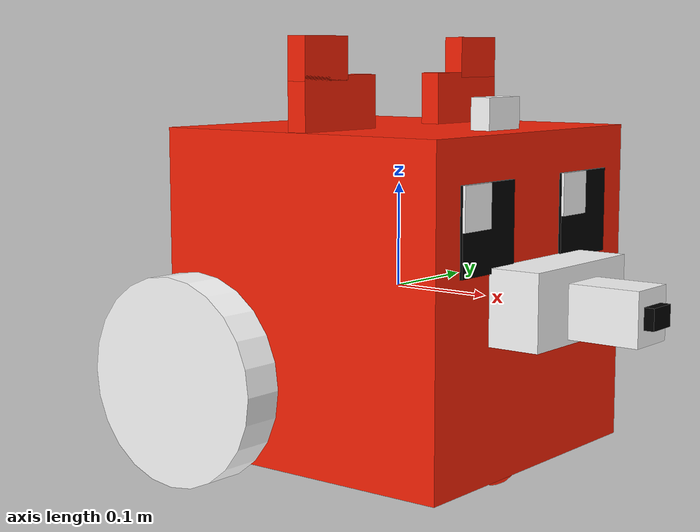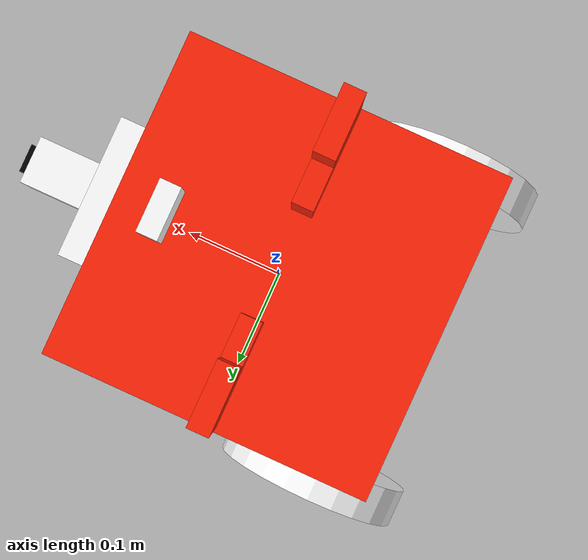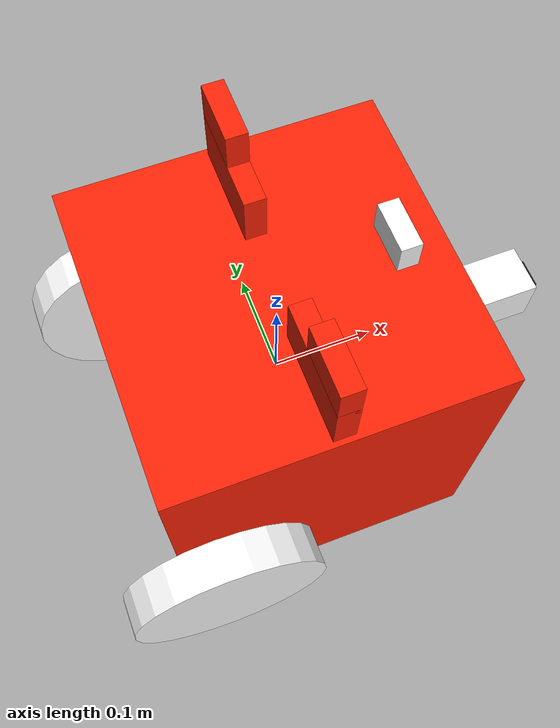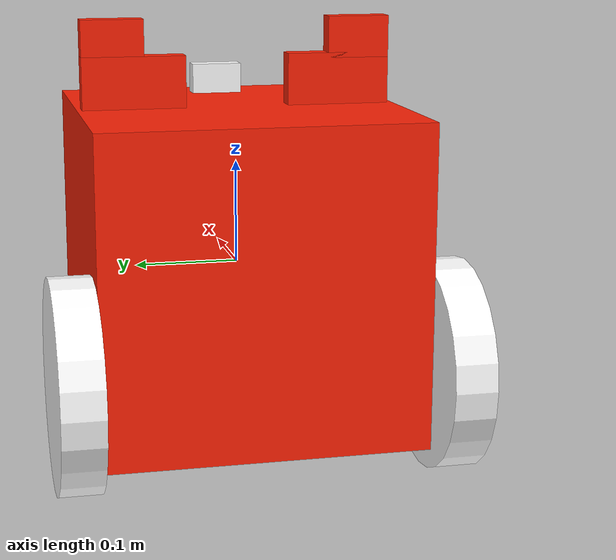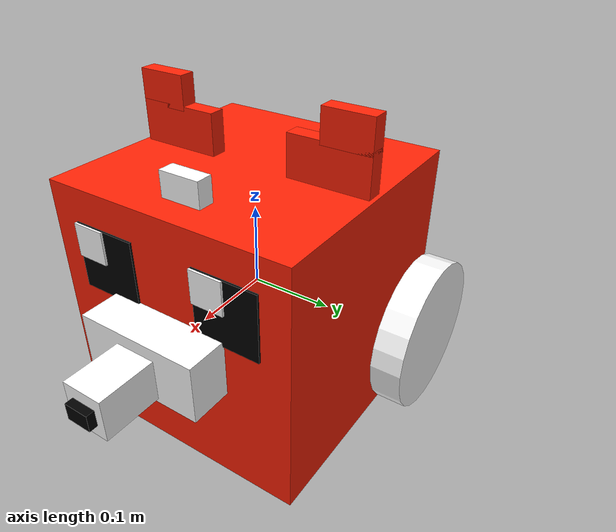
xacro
<?xml version="1.0"?>
<robot name="foxy" xmlns:xacro="http://ros.org/wiki/xacro">
  <xacro:include filename="imu.urdf.xacro" />
  <xacro:include filename="gazebo.urdf.xacro" />

  <!-- Define robot constants -->
  <xacro:property name="base_width" value="0.31"/>
  <xacro:property name="base_length" value="0.31"/>
  <xacro:property name="base_height" value="0.31"/>

  <xacro:property name="ear_low_width" value="0.1"/>
  <xacro:property name="ear_low_length" value="0.02"/>
  <xacro:property name="ear_low_height" value="0.05"/>

  <xacro:property name="ear_high_width" value="0.06"/>
  <xacro:property name="ear_high_length" value="0.02"/>
  <xacro:property name="ear_high_height" value="0.04"/>

  <xacro:property name="eye_width" value="0.08"/>
  <xacro:property name="eye_length" value="0.005"/>
  <xacro:property name="eye_height" value="0.08"/>

  <xacro:property name="eye_reflect_width" value="0.04"/>
  <xacro:property name="eye_reflect_length" value="0.0025"/>
  <xacro:property name="eye_reflect_height" value="0.04"/>

  <xacro:property name="cheek_width" value="0.15"/>
  <xacro:property name="cheek_length" value="0.05"/>
  <xacro:property name="cheek_height" value="0.07"/>

  <xacro:property name="nose_long_width" value="0.05"/>
  <xacro:property name="nose_long_length" value="0.08"/>
  <xacro:property name="nose_long_height" value="0.05"/>

  <xacro:property name="nose_width" value="0.03"/>
  <xacro:property name="nose_length" value="0.01"/>
  <xacro:property name="nose_height" value="0.02"/>

  <xacro:property name="wheel_radius" value="0.10"/>
  <xacro:property name="wheel_width" value="0.04"/>
  <xacro:property name="wheel_ygap" value="0.02"/>
  <xacro:property name="wheel_zoff" value="0.08"/>
  <xacro:property name="wheel_xoff" value="0.12"/>

  <xacro:property name="caster_xoff" value="0.11"/>

  <material name="Orange">
    <color rgba="0.9921568627450981 0.13529411764705882 0.023529411764705882 1.0"/>
  </material>

  <material name="White">
    <color rgba="1. 1. 1.0 1.0"/>
  </material>

  <material name="Black">
    <color rgba="0. 0. 0.0 1.0"/>
    <ambient> 0. 0. 0.0 0.0</ambient>
    <diffuse>0.0 0.0 0.0 0</diffuse>
    <specular>0.0 0.0 0.0 0</specular>
  </material>

  <!-- Define intertial property macros  -->
  <xacro:macro name="box_inertia" params="m w h d">
    <inertial>
      <origin xyz="0 0 0" rpy="${pi/2} 0 ${pi/2}"/>
      <mass value="${m}"/>
      <inertia ixx="${(m/12) * (h*h + d*d)}" ixy="0.0" ixz="0.0" iyy="${(m/12) * (w*w + d*d)}" iyz="0.0" izz="${(m/12) * (w*w + h*h)}"/>
    </inertial>
  </xacro:macro>

  <xacro:macro name="cylinder_inertia" params="m r h">
    <inertial>
      <origin xyz="0 0 0" rpy="${pi/2} 0 0" />
      <mass value="${m}"/>
      <inertia ixx="${(m/12) * (3*r*r + h*h)}" ixy = "0" ixz = "0" iyy="${(m/12) * (3*r*r + h*h)}" iyz = "0" izz="${(m/2) * (r*r)}"/>
    </inertial>
  </xacro:macro>

  <xacro:macro name="sphere_inertia" params="m r">
    <inertial>
      <mass value="${m}"/>
      <inertia ixx="${(2/5) * m * (r*r)}" ixy="0.0" ixz="0.0" iyy="${(2/5) * m * (r*r)}" iyz="0.0" izz="${(2/5) * m * (r*r)}"/>
    </inertial>
  </xacro:macro>

  <!-- Robot Base -->
  <link name="base_link">
    <visual>
      <geometry>
        <box size="${base_length} ${base_width} ${base_height}"/>
      </geometry>
      <material name="Orange"/>
    </visual>

    <collision>
      <geometry>
        <box size="${base_length} ${base_width} ${base_height}"/>
      </geometry>
    </collision>

    <xacro:box_inertia m="15" w="${base_width}" d="${base_length}" h="${base_height}"/>
  </link>

  <!-- Robot Footprint -->
  <link name="base_footprint"/>

  <joint name="base_joint" type="fixed">
    <parent link="base_link"/>
    <child link="base_footprint"/>
    <origin xyz="0.0 0.0 ${-(wheel_radius+wheel_zoff)}" rpy="0 0 0"/>
  </joint>

  <!-- Ears -->
  <xacro:macro name="ear_low" params="prefix y_reflect">
    <link name="${prefix}_ear_low">
      <visual>
        <geometry>
          <box size="${ear_low_length} ${ear_low_width} ${ear_low_height}"/>
        </geometry>
        <material name="Orange"/>
      </visual>

      <collision>
        <geometry>
          <box size="${ear_low_length} ${ear_low_width} ${ear_low_height}"/>
        </geometry>
      </collision>

      <xacro:box_inertia m="0.1" w="${ear_low_width}" d="${ear_low_length}" h="${ear_low_height}"/>
    </link>

    <joint name="${prefix}_ear_low_joint" type="fixed">
      <parent link="base_link"/>
      <child link="${prefix}_ear_low"/>
      <origin xyz="0.0 ${y_reflect*0.1} ${-(wheel_radius+wheel_zoff-base_height-ear_low_height)}" rpy="0 0 0"/>
    </joint>
  </xacro:macro>

  <xacro:ear_low prefix="right" y_reflect="1" />
  <xacro:ear_low prefix="left" y_reflect="-1" />

  <xacro:macro name="ear_high" params="prefix y_reflect">
    <link name="${prefix}_ear_high">
      <visual>
        <geometry>
          <box size="${ear_high_length} ${ear_high_width} ${ear_high_height}"/>
        </geometry>
        <material name="Orange"/>
      </visual>

      <collision>
        <geometry>
          <box size="${ear_high_length} ${ear_high_width} ${ear_high_height}"/>
        </geometry>
      </collision>

      <xacro:box_inertia m="0.1" w="${ear_high_width}" d="${ear_high_length}" h="${ear_high_height}"/>
    </link>

    <joint name="${prefix}_ear_high_joint" type="fixed">
      <parent link="base_link"/>
      <child link="${prefix}_ear_high"/>
      <origin xyz="0.0 ${y_reflect*(0.1+0.02)} ${-(wheel_radius+wheel_zoff-base_height-ear_high_height-ear_low_height)}" rpy="0 0 0"/>
    </joint>
  </xacro:macro>

  <xacro:ear_high prefix="right" y_reflect="1" />
  <xacro:ear_high prefix="left" y_reflect="-1" />

  <!-- Eyes -->
  <xacro:macro name="eye" params="prefix y_reflect">
    <link name="${prefix}_eye">
      <visual>
        <geometry>
          <box size="${eye_length} ${eye_width} ${eye_height}"/>
        </geometry>
        <material name="Black"/>
      </visual>

      <collision>
        <geometry>
          <box size="${eye_length} ${eye_width} ${eye_height}"/>
        </geometry>
      </collision>

      <xacro:box_inertia m="0.01" w="${eye_width}" d="${eye_length}" h="${eye_height}"/>
    </link>

    <joint name="${prefix}_eye_joint" type="fixed">
      <parent link="base_link"/>
      <child link="${prefix}_eye"/>
      <origin xyz="${base_height/2} ${y_reflect*0.08} ${-(wheel_radius+wheel_zoff-base_height/2-0.1)}" rpy="0 0 0"/>
    </joint>
  </xacro:macro>

  <xacro:eye prefix="right" y_reflect="1" />
  <xacro:eye prefix="left" y_reflect="-1" />

  <xacro:macro name="eye_reflect" params="prefix y_reflect">
    <link name="${prefix}_eye_reflect">
      <visual>
        <geometry>
          <box size="${eye_reflect_length} ${eye_reflect_width} ${eye_reflect_height}"/>
        </geometry>
        <material name="White"/>
      </visual>

      <collision>
        <geometry>
          <box size="${eye_reflect_length} ${eye_reflect_width} ${eye_reflect_height}"/>
        </geometry>
      </collision>

      <xacro:box_inertia m="0.01" w="${eye_reflect_width}" d="${eye_reflect_length}" h="${eye_reflect_height}"/>
    </link>

    <joint name="${prefix}_eye_reflect_joint" type="fixed">
      <parent link="base_link"/>
      <child link="${prefix}_eye_reflect"/>
      <origin xyz="${base_height/2+(eye_reflect_length+eye_length)/2} ${-(0.08+0.02)+(y_reflect*(0.08+0.02+0.06))} ${-(wheel_radius+wheel_zoff-base_height/2-0.12)}" rpy="0 0 0"/>
    </joint>
  </xacro:macro>

  <xacro:eye_reflect prefix="right" y_reflect="1" />
  <xacro:eye_reflect prefix="left" y_reflect="0" />

  <!-- Cheek -->

  <link name="cheek_big">
    <visual>
      <geometry>
        <box size="${cheek_length} ${cheek_width} ${cheek_height}"/>
      </geometry>
      <material name="White"/>
    </visual>

    <collision>
      <geometry>
        <box size="${cheek_length} ${cheek_width} ${cheek_height}"/>
      </geometry>
    </collision>

    <xacro:box_inertia m="0.01" w="${cheek_width}" d="${cheek_length}" h="${cheek_height}"/>
  </link>

  <joint name="cheek_big_joint" type="fixed">
    <parent link="base_link"/>
    <child link="cheek_big"/>
    <origin xyz="${base_height/2+cheek_length/2} 0. ${-(wheel_radius+wheel_zoff-base_height/2-0.03)}" rpy="0 0 0"/>
  </joint>

  <!-- Nose -->

  <link name="nose_long">
    <visual>
      <geometry>
        <box size="${nose_long_length} ${nose_long_width} ${nose_long_height}"/>
      </geometry>
      <material name="White"/>
    </visual>

    <collision>
      <geometry>
        <box size="${nose_long_length} ${nose_long_width} ${nose_long_height}"/>
      </geometry>
    </collision>

    <xacro:box_inertia m="0.01" w="${nose_long_width}" d="${nose_long_length}" h="${nose_long_height}"/>
  </link>

  <joint name="nose_long_joint" type="fixed">
    <parent link="base_link"/>
    <child link="nose_long"/>
    <origin xyz="${base_height/2+cheek_length/2+nose_long_length/1.5} 0. ${-(wheel_radius+wheel_zoff-base_height/2-0.025)}" rpy="0 0 0"/>
  </joint>

  <link name="nose">
    <visual>
      <geometry>
        <box size="${nose_length} ${nose_width} ${nose_height}"/>
      </geometry>
      <material name="Black"/>
    </visual>

    <collision>
      <geometry>
        <box size="${nose_length} ${nose_width} ${nose_height}"/>
      </geometry>
    </collision>

    <xacro:box_inertia m="0.01" w="${nose_width}" d="${nose_length}" h="${nose_height}"/>
  </link>

  <joint name="nose_joint" type="fixed">
    <parent link="base_link"/>
    <child link="nose"/>
    <origin xyz="${base_height/2+cheek_length/2+nose_long_length+nose_length*2-0.002} 0. ${-(wheel_radius+wheel_zoff-base_height/2-0.025)}" rpy="0 0 0"/>
  </joint>

  <!-- Wheels -->
  <xacro:macro name="wheel" params="prefix x_reflect y_reflect">
    <link name="${prefix}_link">
      <visual>
        <origin xyz="0 0 0" rpy="${pi/2} 0 0"/>
        <geometry>
            <cylinder radius="${wheel_radius}" length="${wheel_width}"/>
        </geometry>
        <material name="White"/>
      </visual>

      <collision>
        <origin xyz="0 0 0" rpy="${pi/2} 0 0"/>
        <geometry>
          <cylinder radius="${wheel_radius}" length="${wheel_width}"/>
        </geometry>
      </collision>

      <xacro:cylinder_inertia m="0.5" r="${wheel_radius}" h="${wheel_width}"/>
    </link>

    <joint name="${prefix}_joint" type="continuous">
      <parent link="base_link"/>
      <child link="${prefix}_link"/>
      <origin xyz="${x_reflect*wheel_xoff} ${y_reflect*(base_width/2+wheel_ygap)} ${-wheel_zoff}" rpy="0 0 0"/>
      <axis xyz="0 1 0"/>
    </joint>
  </xacro:macro>

  <xacro:wheel prefix="left_wheel" x_reflect="-1" y_reflect="1" />
  <xacro:wheel prefix="right_wheel" x_reflect="-1" y_reflect="-1" />

  <xacro:property name="radius_caster" value="${(wheel_radius+wheel_zoff-(base_height/2))}"/>

  <!-- Caster Wheel -->
  <link name="front_caster">
    <visual>
      <geometry>
        <sphere radius="${radius_caster}"/>
      </geometry>
      <material name="Orange"/>
    </visual>

    <collision>
      <origin xyz="0 0 0" rpy="0 0 0"/>
      <geometry>
        <sphere radius="${radius_caster}"/>
      </geometry>
    </collision>

    <xacro:sphere_inertia m="0.1" r="${radius_caster}"/>
  </link>

  <joint name="caster_joint" type="continuous">
    <parent link="base_link"/>
    <child link="front_caster"/>
    <origin xyz="${caster_xoff} 0.0 ${-(base_height/2)}" rpy="0 0 0"/>
  </joint>

  <gazebo reference="front_caster">
      <material>Orange</material>
      <mu1 value="0.001"/>
      <mu2 value="0.001"/>
  </gazebo>

</robot>

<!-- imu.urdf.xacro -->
<robot xmlns:xacro="http://www.ros.org/wiki/xacro" name="imu">

    <joint name="imu_joint" type="fixed">
        <parent link="base_link"/>
        <child link="imu_link"/>
        <origin xyz="0.11 0.0 0.17" rpy="0 0 0"/>
    </joint>

    <link name="imu_link">
        <visual>
            <origin xyz="0 0 0"/>
            <geometry>
                <box size="0.02 0.05 0.03"/>
            </geometry>
            <material name="White"/>
        </visual>
        <collision>
            <origin xyz="0 0 0"/>
            <geometry>
                <box size="0.02 0.05 0.03"/>
            </geometry>
        </collision>
        <inertial>
            <origin xyz="0 0 0" rpy="0 0 0"/>
            <mass value="0.01" />
            <inertia ixx="${(1/12) * 0.01 * (0.2*0.2+0.3*0.3)}" ixy="0.0" ixz="0.0"
                     iyy="${(1/12) * 0.01 * (0.2*0.2+0.3*0.53)}" iyz="0.0"
                     izz="${(1/12) * 0.01 * (0.2*0.2+0.3*0.3)}" />
        </inertial>
    </link>

    <gazebo reference="imu_link">
        <gravity>true</gravity>
        <sensor name='imu_sensor' type='imu'>
            <gz_frame_id>fox/imu_frame</gz_frame_id>
            <always_on>true</always_on>
            <update_rate>1</update_rate>
            <visualize>true</visualize>
            <topic>imu</topic>
            <pose>0 0 0 0 0 0</pose>
        </sensor>
    </gazebo>

</robot>
